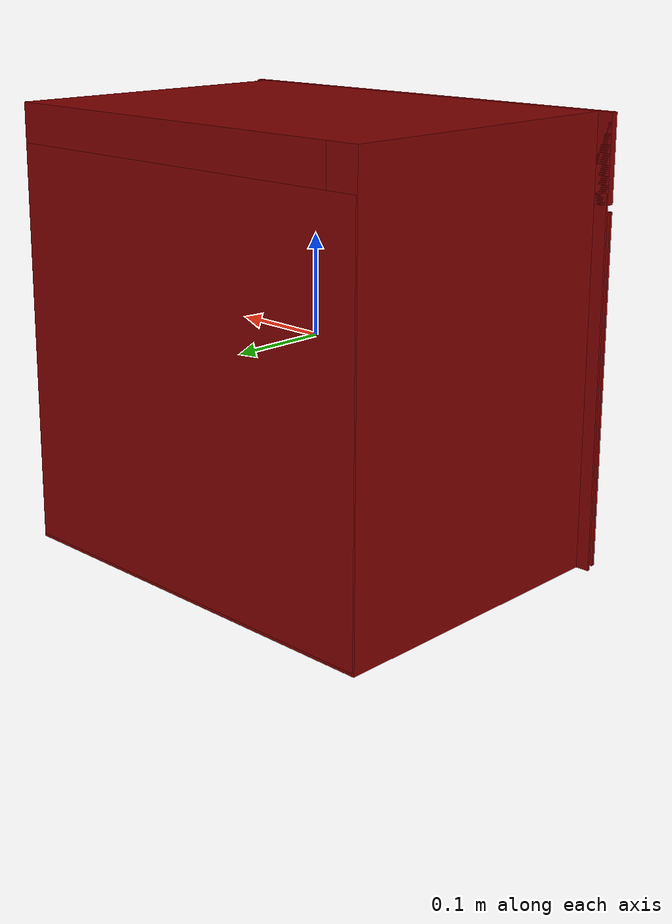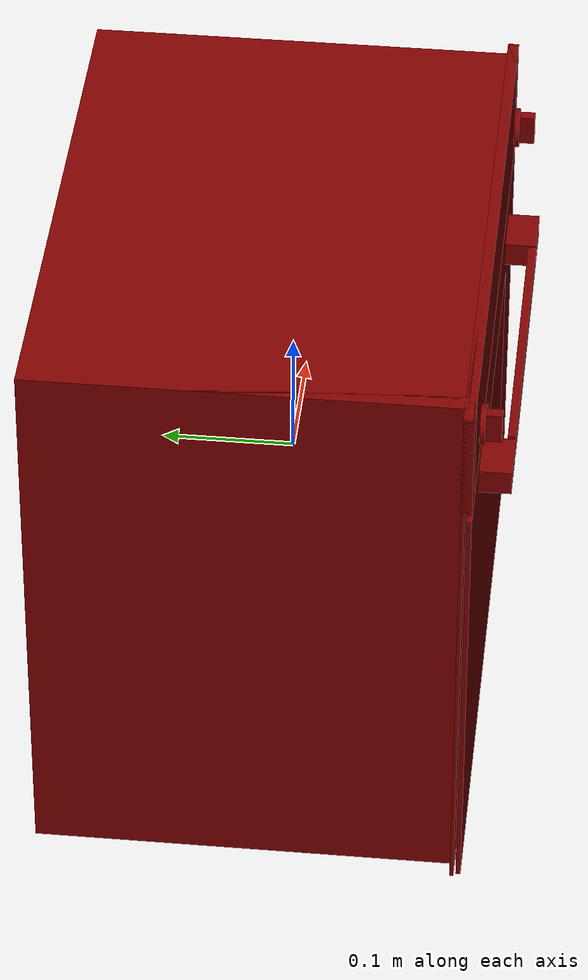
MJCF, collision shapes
<?xml version='1.0' encoding='UTF-8'?>
<mujoco model="model">
  <option timestep="0.002" gravity="0.0 0.0 -9.81"/>
  <compiler angle="radian"/>
  <asset>
    <mesh file="visuals/door.obj" name="door_vis"/>
    <mesh file="visuals/door_Clear.obj" name="door_Clear_vis"/>
    <mesh file="visuals/knob_temp.obj" name="knob_temp_vis"/>
    <mesh file="visuals/knob_time.obj" name="knob_time_vis"/>
    <mesh file="visuals/Body001.obj" name="Body001_vis"/>
    <mesh file="visuals/rack0.obj" name="rack0_vis"/>
    <mesh file="visuals/rack1.obj" name="rack1_vis"/>
    <texture file="visuals/T_BC001.png" name="Body001_material" type="2d"/>
    <material name="Body001_material" rgba="1 1 1 1.0" texture="Body001_material" shininess="0.4472135901451111" specular="2"/>
    <texture file="visuals/T_BC001.png" name="door_material" type="2d"/>
    <material name="door_material" rgba="1 1 1 1.0" texture="door_material" shininess="0.4472135901451111" specular="2"/>
    <texture file="visuals/T_BC001.png" name="door_Clear_material" type="2d"/>
    <material name="door_Clear_material" rgba="1 1 1 0.7562724351882935" texture="door_Clear_material" shininess="0.4472135901451111" specular="0.3103448502657381"/>
    <texture file="visuals/T_BC001.png" name="knob_temp_material" type="2d"/>
    <material name="knob_temp_material" rgba="1 1 1 1.0" texture="knob_temp_material" shininess="0.4472135901451111" specular="0.3103448502657381"/>
    <texture file="visuals/T_BC001.png" name="knob_time_material" type="2d"/>
    <material name="knob_time_material" rgba="1 1 1 1.0" texture="knob_time_material" shininess="0.4472135901451111" specular="0.3103448502657381"/>
    <texture file="visuals/T_BC001.png" name="rack0_material" type="2d"/>
    <material name="rack0_material" rgba="1 1 1 1.0" texture="rack0_material" shininess="0.4472135901451111" specular="2"/>
    <texture file="visuals/T_BC001.png" name="rack1_material" type="2d"/>
    <material name="rack1_material" rgba="1 1 1 1.0" texture="rack1_material" shininess="0.4472135901451111" specular="2"/>
  </asset>
  <default>
    <default class="visual">
      <geom conaffinity="0" contype="0" group="1" type="mesh"/>
    </default>
    <default class="collision">
      <geom group="0" rgba="0.5 0 0 0.5"/>
    </default>
    <default class="spawn">
      <geom group="0" rgba="1 1 1 0.5" contype="0" conaffinity="0"/>
      <site group="0" rgba="1 1 1 0.5"/>
    </default>
    <default class="region">
      <geom group="1" conaffinity="0" contype="0" rgba="0 1 0 0"/>
    </default>
  </default>
  <worldbody>
    <body>
      <body name="object">
        <geom mesh="Body001_vis" type="mesh" solimp="0.998 0.998 0.001" solref="0.001 1" friction="0.95 0.3 0.1" class="visual" material="Body001_material"/>
        <geom class="collision" type="box" pos="0.0007351533859036863 0.014797139912843704 -0.19550444185733795" size="0.21786123514175415 0.16036567091941833 0.0267990380525589" quat="1.0 0.0 0.0 0.0"/>
        <geom class="collision" type="box" pos="0.0007351405802182853 0.014797437936067581 0.1667841672897339" size="0.21786123514175415 0.1603645235300064 0.0555194616317749" quat="1.0 0.0 0.0 0.0"/>
        <geom class="collision" type="box" pos="0.0016347636701539159 0.14759285748004913 -0.018107058480381966" size="0.21696160733699799 0.027570372447371483 0.20136292278766632" quat="1.0 0.0 0.0 0.0"/>
        <geom class="collision" type="box" pos="0.2007897049188614 0.007831944152712822 0.006639865692704916" size="0.01780686154961586 0.1534004956483841 0.198159858584404" quat="1.0 0.0 0.0 0.0"/>
        <geom class="collision" type="box" pos="-0.20022809505462646 0.014797218143939972 6.100162863731384e-08" size="0.01689816825091839 0.1603657305240631 0.22230353951454163" quat="1.0 0.0 0.0 0.0"/>
        <geom class="collision" type="box" pos="1.5978002920746803e-07 -0.1468595564365387 0.17986950278282166" size="0.2318679541349411 0.004103576764464378 0.042434122413396835" quat="1.0 0.0 0.0 0.0"/>
        <geom class="collision" type="box" pos="-0.22102075815200806 -0.1468595564365387 0.17986950278282166" size="0.010847033932805061 0.004103579558432102 0.042434122413396835" quat="1.0 0.0 0.0 0.0"/>
        <geom class="collision" type="box" pos="0.22063153982162476 -0.1468595564365387 0.17986950278282166" size="0.011236577294766903 0.004103581886738539 0.042434122413396835" quat="1.0 0.0 0.0 0.0"/>
        <geom class="collision" type="box" pos="0.2203047126531601 -0.14416229724884033 -0.03665410354733467" size="0.01090974360704422 0.0014063382986932993 0.1853591799736023" quat="1.0 0.0 0.0 0.0"/>
        <geom class="collision" type="box" pos="-0.21961231529712677 -0.14416229724884033 -0.03665410354733467" size="0.01090974360704422 0.0014063387643545866 0.1853591799736023" quat="1.0 0.0 0.0 0.0"/>
        <body name="door">
          <joint axis="1.0 0.0 0.0" pos="1.6768863986271754e-07 -0.15096332784742117 -0.21794938296079636" limited="true" name="door_joint" range="0.0 1.15" type="hinge" damping="1" frictionloss="1" armature="1" stiffness="2"/>
          <geom mesh="door_vis" type="mesh" solimp="0.998 0.998 0.001" solref="0.001 1" friction="0.95 0.3 0.1" class="visual" material="door_material"/>
          <geom class="collision" type="box" pos="-0.0006046795751899481 -0.14868785440921783 -0.043332383036613464" size="0.1520240604877472 0.001343670068308711 0.10845881700515747" quat="1.0 0.0 0.0 0.0"/>
          <geom class="collision" type="box" pos="0.00025432545226067305 -0.17217525839805603 0.10586381703615189" size="0.11488161981105804 0.003030058229342103 0.00963595137000084" quat="1.0 0.0 0.0 0.0" name="door_handle_main"/>
          <geom class="collision" type="box" pos="-0.1366843283176422 -0.16220402717590332 0.10586380958557129" size="0.019570212811231613 0.01288915891200304 0.009635921567678452" quat="1.0 0.0 0.0 0.0"/>
          <geom class="collision" type="box" pos="0.1363723874092102 -0.1633288562297821 0.10586380958557129" size="0.019453851506114006 0.011863337829709053 0.009635918773710728" quat="1.0 0.0 0.0 0.0"/>
          <geom class="collision" type="box" pos="1.6768863986271754e-07 -0.1491619348526001 -0.043531619012355804" size="0.2318679690361023 0.0018013929948210716 0.17441776394844055" quat="1.0 0.0 0.0 0.0" name="door_main"/>
          <geom class="collision" type="box" pos="-0.00022154959151521325 -0.1491619348526001 -0.04310676082968712" size="0.15161040425300598 0.001801388687454164 0.10714123398065567" quat="1.0 0.0 0.0 0.0"/>
          <body name="door_Clear">
            <geom mesh="door_Clear_vis" type="mesh" solimp="0.998 0.998 0.001" solref="0.001 1" friction="0.95 0.3 0.1" class="visual" material="door_Clear_material"/>
            <geom class="collision" type="box" pos="-0.0006046795751899481 -0.14868785440921783 -0.043332383036613464" size="0.1520240604877472 0.001343670068308711 0.10845881700515747" quat="1.0 0.0 0.0 0.0"/>
          </body>
        </body>
        <body name="knob_temp">
          <joint axis="0.0 1.0 0.0" pos="-0.17988859117031097 -0.15710695087909698 0.17929251492023468" limited="true" name="knob_temp_joint" range="0.0 5.201081170943102" type="hinge" damping="0.05" frictionloss="0.75" armature="1"/>
          <geom mesh="knob_temp_vis" type="mesh" solimp="0.998 0.998 0.001" solref="0.001 1" friction="0.95 0.3 0.1" class="visual" material="knob_temp_material"/>
          <geom class="collision" type="cylinder" pos="-0.18003807961940765 -0.15447160601615906 0.17931336164474487" size="0.01481514610350132 0.0019576754420995712" quat="5.338507946817117e-08 5.338507591545749e-08 -0.7071068286895752 0.7071067690849304" friction="100 0.5 0.01"/>
          <geom class="collision" type="box" pos="-0.18007723987102509 -0.1621801257133484 0.17886227369308472" size="0.004111689515411854 0.005614427383989096 0.011768537573516369" quat="1.0 0.0 0.0 0.0" name="knob_temp_main" friction="100 0.5 0.01"/>
        </body>
        <body name="knob_time">
          <joint axis="0.0 -1.0 0.0" pos="0.18060648441314697 -0.15710695087909698 0.18014253675937653" limited="true" name="knob_time_joint" range="-1.1344640137963142 3.141592653589793" type="hinge" damping="0.05" frictionloss="0.75" armature="1"/>
          <geom mesh="knob_time_vis" type="mesh" solimp="0.998 0.998 0.001" solref="0.001 1" friction="0.95 0.3 0.1" class="visual" material="knob_time_material"/>
          <geom class="collision" type="cylinder" pos="0.18075597286224365 -0.15447160601615906 0.18012169003486633" size="0.01481514610350132 0.0019576754420995712" quat="0.7071068286895752 0.7071067690849304 0.0 0.0" friction="100 0.5 0.01"/>
          <geom class="collision" type="box" pos="0.18079513311386108 -0.1621801257133484 0.1805727779865265" size="0.00411168672144413 0.005614426452666521 0.011768534779548645" quat="1.0 0.0 0.0 0.0" name="knob_time_main" friction="100 0.5 0.01"/>
        </body>
        <body name="rack0">
          <geom class="region" name="reg_rack0" type="box" pos="-9.466707706451416e-05 -0.004995040595531464 -0.04214541253168136" size="0.15372609889507294 0.10862825608253479 0.04292685696762055"/>
          <joint axis="0.0 -1.0 0.0" pos="0.0019934596493840218 -0.006571683567017317 -0.09075158089399338" limited="true" name="rack0_joint" range="0.0 0.20" type="slide" damping="1" frictionloss="1" armature=".01" stiffness="0.05"/>
          <geom mesh="rack0_vis" type="mesh" solimp="0.998 0.998 0.001" solref="0.001 1" friction="0.95 0.3 0.1" class="visual" material="rack0_material"/>
          <geom class="collision" type="box" pos="-0.00012472379603423178 -0.0053901090286672115 -0.09283013641834259" size="0.15719912946224213 0.11320768296718597 0.0034432290121912956" quat="1.0 0.0 0.0 0.0"/>
          <geom class="collision" type="box" pos="0.17125560343265533 -0.005005011800676584 -0.0834798663854599" size="0.006573997437953949 0.11217126995325089 0.0016717874677851796" quat="1.0 0.0 0.0 0.0"/>
          <geom class="collision" type="box" pos="0.16164535284042358 -0.005005011800676584 -0.08883830904960632" size="0.006573961582034826 0.11217070370912552 0.0016717874677851796" quat="0.9005489349365234 0.0 -0.4347546398639679 0.0"/>
          <geom class="collision" type="box" pos="0.15932367742061615 -0.005005011800676584 -0.09936332702636719" size="0.006573961582034826 0.11217070370912552 0.0016717874677851796" quat="0.8728246092796326 0.0 0.4880339801311493 0.0"/>
          <geom class="collision" type="box" pos="-0.17250265181064606 -0.005005011800676584 -0.0834798663854599" size="0.006573992315679789 0.11217119544744492 0.0016717874677851796" quat="1.0 0.0 0.0 0.0"/>
          <geom class="collision" type="box" pos="-0.16248467564582825 -0.005005011800676584 -0.08883830904960632" size="0.006573961582034826 0.11217070370912552 0.0016717874677851796" quat="0.9005488157272339 0.0 0.4347549378871918 0.0"/>
          <geom class="collision" type="box" pos="-0.16020508110523224 -0.005005011800676584 -0.09936332702636719" size="0.006573961582034826 0.11217070370912552 0.0016717874677851796" quat="0.8728245496749878 0.0 -0.48803412914276123 0.0"/>
        </body>
        <body name="rack1">
          <geom class="region" name="reg_rack1" type="box" pos="-9.466707706451416e-05 -0.004995040595531464 0.061443477869033813" size="0.15372609889507294 0.10862825608253479 0.04562777823209763"/>
          <joint axis="0.0 -1.0 0.0" pos="0.002087306696921587 -0.006571618374437094 0.01068439707159996" limited="true" name="rack1_joint" range="0.0 0.20" type="slide" damping="1" frictionloss="1" armature=".01" stiffness="0.05"/>
          <geom mesh="rack1_vis" type="mesh" solimp="0.998 0.998 0.001" solref="0.001 1" friction="0.95 0.3 0.1" class="visual" material="rack1_material"/>
          <geom class="collision" type="box" pos="-0.00012472379603423178 -0.0053901090286672115 0.008495972491800785" size="0.15719912946224213 0.11320768296718597 0.0033434361685067415" quat="1.0 0.0 0.0 0.0"/>
          <geom class="collision" type="box" pos="0.17125560343265533 -0.005005011800676584 0.0179460346698761" size="0.006573982071131468 0.11217103153467178 0.0016717874677851796" quat="1.0 0.0 0.0 0.0"/>
          <geom class="collision" type="box" pos="0.16164535284042358 -0.005005011800676584 0.01258759293705225" size="0.006573961582034826 0.11217070370912552 0.0016717874677851796" quat="0.9005489349365234 0.0 -0.4347546398639679 0.0"/>
          <geom class="collision" type="box" pos="0.15932367742061615 -0.005005011800676584 0.0020625749602913857" size="0.006573961582034826 0.11217070370912552 0.0016717874677851796" quat="0.8728246092796326 0.0 0.4880339801311493 0.0"/>
          <geom class="collision" type="box" pos="-0.17250265181064606 -0.005005011800676584 0.0179460346698761" size="0.0065739769488573074 0.11217094957828522 0.0016717874677851796" quat="1.0 0.0 0.0 0.0"/>
          <geom class="collision" type="box" pos="-0.16248467564582825 -0.005005011800676584 0.01258759293705225" size="0.006573961582034826 0.11217070370912552 0.0016717874677851796" quat="0.9005488157272339 0.0 0.4347549378871918 0.0"/>
          <geom class="collision" type="box" pos="-0.16020508110523224 -0.005005011800676584 0.0020625749602913857" size="0.006573961582034826 0.11217070370912552 0.0016717874677851796" quat="0.8728245496749878 0.0 -0.48803412914276123 0.0"/>
        </body>
        <geom class="region" name="reg_int" type="box" pos="-0.00020550936460494995 -0.013292655348777771 -0.028809189796447754" size="0.15289825743436813 0.12930133736133576 0.13587780094146729"/>
        <geom class="region" name="reg_main" type="box" pos="3.725290298461914e-09 0.012099763378500938 0.0" size="0.23286807334423065 0.16406322813034058 0.22330373322963715"/>
      </body>
    </body>
  </worldbody>
  <actuator>
    <motor name="door_joint_actuator" joint="door_joint" gear="50"/>
    <motor name="knob_temp_joint_actuator" joint="knob_temp_joint" gear="50"/>
    <motor name="knob_time_joint_actuator" joint="knob_time_joint" gear="50"/>
    <motor name="rack0_joint_actuator" joint="rack0_joint" gear="50"/>
    <motor name="rack1_joint_actuator" joint="rack1_joint" gear="50"/>
  </actuator>
</mujoco>
